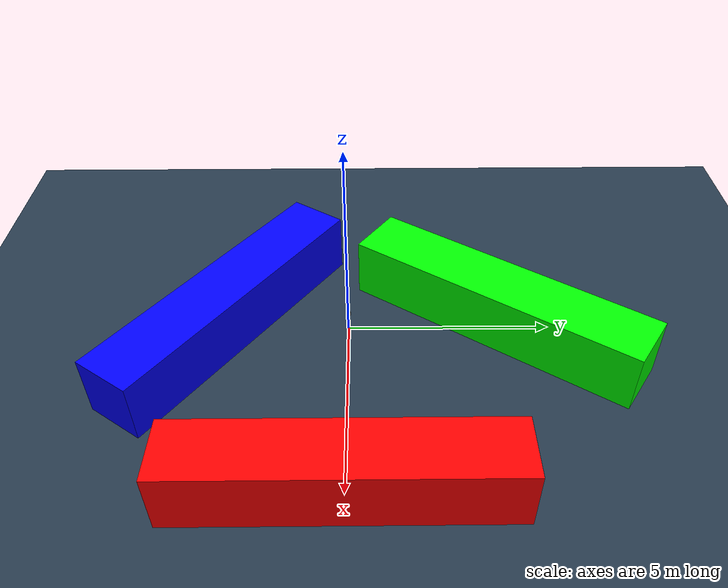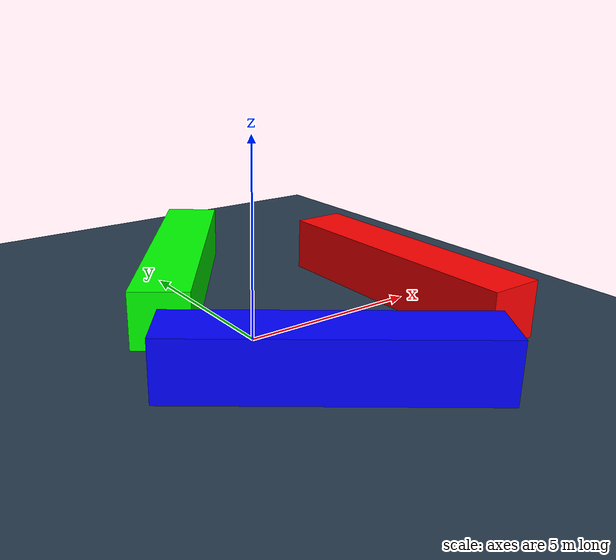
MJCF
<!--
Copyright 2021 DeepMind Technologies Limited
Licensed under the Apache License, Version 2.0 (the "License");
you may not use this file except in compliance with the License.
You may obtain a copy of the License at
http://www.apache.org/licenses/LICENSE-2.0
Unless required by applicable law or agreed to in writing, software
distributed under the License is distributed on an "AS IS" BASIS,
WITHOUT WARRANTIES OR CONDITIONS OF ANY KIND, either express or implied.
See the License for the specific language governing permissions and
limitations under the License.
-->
<mujoco>

  <include file="../robot/lidar.xml"/>
  <statistic meansize=".05" />

  <visual>
    <rgba haze="0.15 0.25 0.35 1" />
    <quality shadowsize="4096" />
    <map stiffness="700" shadowscale="0.5" fogstart="1" fogend="15" zfar="40" haze="1" />
  </visual>

  <asset>
    <texture type="skybox" builtin="gradient" rgb1="0.3 0.5 0.7" rgb2="0 0 0" width="512"
      height="512" />
    <texture name="texplane" type="2d" builtin="checker" rgb1=".2 .3 .4" rgb2=".1 0.15 0.2"
      width="512" height="512" mark="cross" markrgb=".8 .8 .8" />

    <material name="matplane" reflectance="0.3" texture="texplane" texrepeat="10 10"
      texuniform="true" />
  </asset>

  <worldbody>
    <light diffuse=".4 .4 .4" specular="0.1 0.1 0.1" pos="0 0 2.0" dir="0 0 -1" castshadow="false" />
    <light directional="true" diffuse=".8 .8 .8" specular="0.2 0.2 0.2" pos="0 0 4" dir="0 0 -1" />

    <geom name="ground" type="plane" size="0 0 1" pos="0 0 0" quat="1 0 0 0" material="matplane"
      condim="1" />
    <body name="object1" pos="5 0 0.75" quat="0 0 0 1">
      <joint type="free" />
      <inertial mass="0.1" pos="0 0 0" diaginertia="0.001 0.001 0.001"></inertial>
      <geom type="box" size="0.75 3.75 0.75" mass="1" pos="0 0 0" rgba="1 0 0 1" />

    </body>
    <body name="object2" pos="0 3.75 0.75" quat="0.3007058 0 0 0.953717">
      <joint type="free" />
      <inertial mass="0.1" pos="0 0 0" diaginertia="0.001 0.001 0.001"></inertial>
      <geom type="box" size="0.75 3.75 0.75" mass="1" pos="0 0 0"  rgba="0 1 0 1"/>
    </body>
    <body name="object3" pos="0 -3 0.75" quat="0.3007058 0 0 0.953717">
      <joint type="free" />
      <inertial mass="0.1" pos="0 0 0" diaginertia="0.001 0.001 0.001"></inertial>
      <geom type="box" size="3.75 0.75 0.75" mass="1" pos="0 0 0" rgba="0 0 1 1"/>
    </body>
  </worldbody>
</mujoco>

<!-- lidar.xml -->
<mujoco model="two_dof_robot">
  <compiler angle="radian" meshdir="assets/" texturedir="assets/" />
  <extension>
    <plugin plugin="mujoco.plugin.lidar">
      <instance name="lidar_1">
        <config key="size" value="24 1" />
        <config key="fov" value=".6 0.0" />
        <config key="max_range" value="13.0" />
      </instance>
    </plugin>
  </extension>

  <worldbody>

    <body name="lidar_mount" pos="0 0 0.5">
            <inertial mass="1.0" pos="0 0 0" diaginertia="0.001 0.001 0.001"></inertial>
            <geom type="cylinder" size="0.05 0.05" mass="1" pos="0 0 0" />
            <site name="lidar_sensor_frame" pos="0 0 .15"/>
        </body>
  </worldbody>
  <option integrator="implicitfast" />
  <default>
    <default class="visual">
      <geom group="2" type="mesh" contype="0" conaffinity="0" />
    </default>
    <default class="collision">
      <geom group="3" type="mesh" />
    </default>
  </default>

  <sensor>
    <plugin name="lidar_1" instance="lidar_1" objtype="site" objname="lidar_sensor_frame"/>
  </sensor>

</mujoco>
